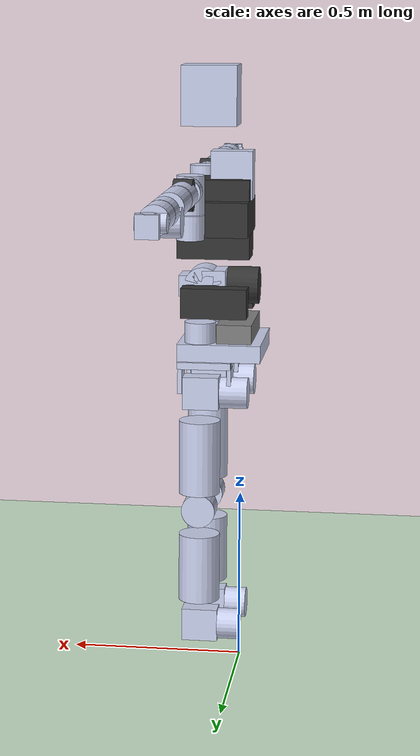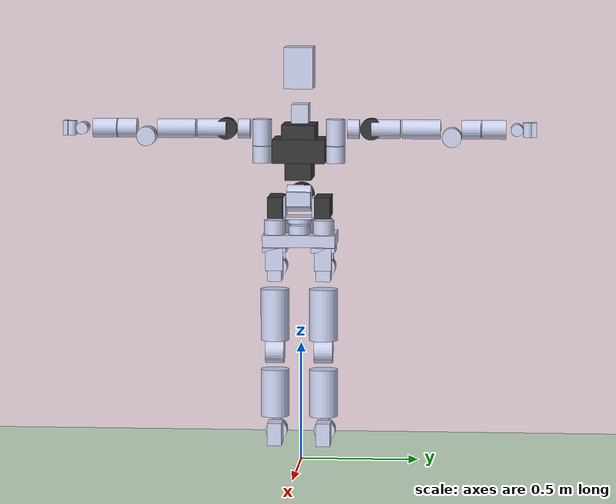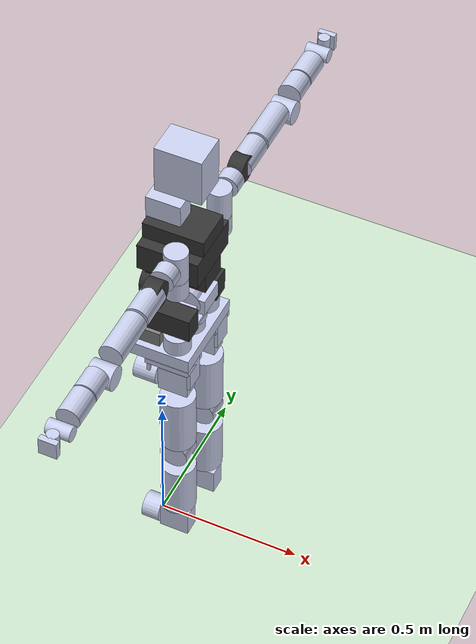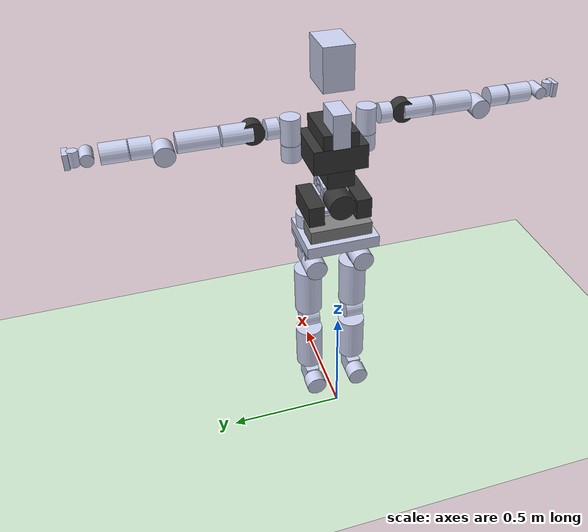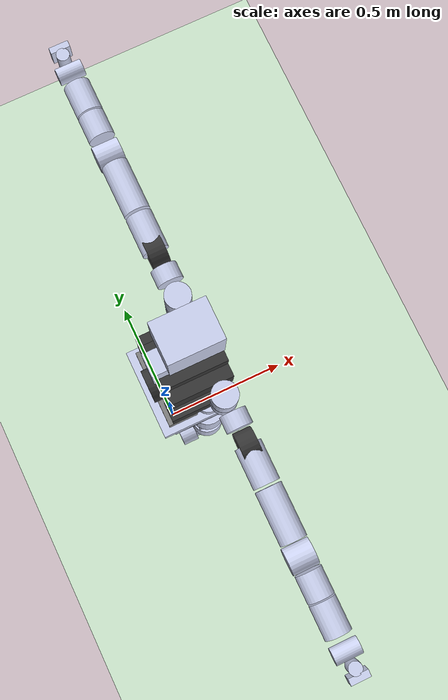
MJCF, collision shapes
<mujoco model="dyros_tocabi_description">

    <compiler angle="radian" balanceinertia="true" meshdir="../meshes/dyros_tocabi/" />
    <default>
        <default class="viz">
            <geom conaffinity="0" contype="0" group="1" rgba=".6 .6 .7 1" type="mesh" />
        </default>
        <default class="cls">
            <geom group="2" rgba="0.79216 0.81961 0.93333 0.5" />
        </default>
        <default class="cls_f">
            <geom friction="1 0.005 0.0001" group="2" rgba="0.79216 0.81961 0.93333 0.1" />
        </default>
        <default class="FTsensor">
            <site group="4" rgba=".1 .1 .9 1" size="0.005 0.005" type="cylinder" />
        </default>
    </default>
    <option cone="elliptic" gravity="0 0 -9.81" iterations="50" jacobian="dense" solver="Newton" timestep="0.0005" tolerance="1e-10" />

    <visual>
        <quality offsamples="16" shadowsize="2048" />
        <map stiffness="10" znear="0.05" />
    </visual>

    <asset>
        <mesh file="Pelvis_link2.STL" name="Pelvis_link" scale="0.001 0.001 0.001" />
        <mesh file="HipRoll_R_link.STL" name="HipRoll_R_link" />
        <mesh file="HipCenter_R_Link.STL" name="HipCenter_R_Link" />
        <mesh file="Thigh_R_Link.STL" name="Thigh_R_Link" />
        <mesh file="Knee_R_Link.STL" name="Knee_R_Link" />
        <mesh file="AnkleCenter_R_Link.STL" name="AnkleCenter_R_Link" />
        <mesh file="AnkleRoll_R_Link.STL" name="AnkleRoll_R_Link" />
        <mesh file="HipRoll_L_Link.STL" name="HipRoll_L_Link" />
        <mesh file="HipCenter_L_Link.STL" name="HipCenter_L_Link" />
        <mesh file="Thigh_L_Link.STL" name="Thigh_L_Link" />
        <mesh file="Knee_L_Link.STL" name="Knee_L_Link" />
        <mesh file="AnkleCenter_L_Link.STL" name="AnkleCenter_L_Link" />
        <mesh file="AnkleRoll_L_Link.STL" name="AnkleRoll_L_Link" />
        <mesh file="waistyaw.STL" name="waist1" scale="0.001 0.001 0.001" />
        <mesh file="waist2.STL" name="waist2" />
        <mesh file="upperbody.STL" name="upperbody" />
        <mesh file="R_shoulder1.STL" name="R_shoulder1" />
        <mesh file="R_shoulder2.STL" name="R_shoulder2" />
        <mesh file="R_shoulder3.STL" name="R_shoulder3" />
        <mesh file="R_arm.STL" name="R_arm" />
        <mesh file="R_elbow.STL" name="R_elbow" />
        <mesh file="R_forearm.STL" name="R_forearm" />
        <mesh file="R_wrist1.STL" name="R_wrist1" />
        <mesh file="L_shoulder1.STL" name="L_shoulder1" />
        <mesh file="L_shoulder2.STL" name="L_shoulder2" />
        <mesh file="L_shoulder3.STL" name="L_shoulder3" />
        <mesh file="L_arm.STL" name="L_arm" />
        <mesh file="L_elbow.STL" name="L_elbow" />
        <mesh file="L_forearm.STL" name="L_forearm" />
        <mesh file="L_wrist1.STL" name="L_wrist1" />
        <mesh file="neck.STL" name="neck" />
        <mesh file="head.STL" name="head" scale="0.001 0.001 0.001" />
        <mesh file="wrist2joint.STL" name="hand" scale="0.001 0.001 0.001" />
        <mesh file="Foot_Link.STL" name="Foot_Link" />

        <texture builtin="gradient" height="128" rgb1="0.4 0.6 0.8" rgb2="0 0 0" type="skybox" width="128" />
        <texture builtin="flat" height="128" mark="cross" markrgb="1 1 1" name="texgeom" rgb1="0.6 0.6 0.6" rgb2="0.6 0.6 0.6" type="cube" width="128" />
        <texture builtin="checker" height="100" name="texplane" rgb1="0.2 0.4 0.6" rgb2="0.8 0.8 0.8" type="2d" width="100" />
        <material name="geom" texture="texgeom" texuniform="true" />
        <material name="MatPlane" reflectance="0.3" texrepeat="1 1" texture="texplane" texuniform="true" />
        <material name="MatPlane2" reflectance="0.3" rgba="0.8 0.9 0.8 0.5" />
    <material name="MatPlane3" reflectance="0.5" shininess="1" specular="1" texrepeat="60 60" texture="texplane"/>
    </asset>

    <worldbody>
        <geom name="ground" type="plane" pos="0 0 0" size="30 30 .05" rgba="0.8 0.9 0.8 1" material="MatPlane3" group="3"/>
        <light diffuse=".8 .8 .8" dir="0 0 -10" directional="true" pos="0 0 10" />
        <light diffuse=".5 .5 .5" dir="-10 0 0" directional="true" pos="10 0 0" />

        <body euler="0 0 0" name="base_link" pos="0.0 0 0.92983">
            <joint armature="0" damping="0" frictionloss="0" limited="false" name="virtual_joint" stiffness="0" type="free" />
            <inertial fullinertia="0.113284 0.0585 0.1422 -0.000116 -0.0056 -0.0" mass="12.9" pos="0.0585 0 0.0431" />
            <geom class="viz" mesh="Pelvis_link" pos="0.11 0 0.02" quat="0.5 0.5 0.5 0.5" rgba="0.20313 0.20313 0.20313 1" />
            <geom class="cls" pos="0.11 0 0.039" size="0.045 0.044" type="cylinder" />
            <geom class="cls" pos="0.11 0.1025 0.05" size="0.045 0.055" type="cylinder" />
            <geom class="cls" pos="0.11 -0.1025 0.05" size="0.045 0.055" type="cylinder" />
            <geom class="cls" pos="0.052 0 0.02" size="0.12 0.1525 0.025" type="box" />
            <geom group="1" pos="0.01 0 0.05" size="0.05 0.13 0.05" type="box" />
            <site group="4" name="Pelvis_IMU" rgba=".1 .1 .9 1" size="0.005 0.005" type="cylinder" />
            <body name="L_HipRoll_Link" pos="0.11 0.1025 -0.1025">
                <inertial fullinertia="0.01821 0.03121 0.2928 -1.676E-07 -0.0007745 -4.53E-09" mass="2.679" pos="-0.06477 0 0.05149" />
                <joint axis="0 0 1" armature="0.614" damping="2.0" frictionloss="8.22" limited="true" name="L_HipYaw_Joint" pos="0 0 0" range="-3.14 3.14" />
                <geom class="viz" mesh="HipRoll_L_Link" rgba="0.20313 0.20313 0.20313 1" />
                <geom class="cls" pos="-0.1 0 0" quat="0.707107 0 0.707107 0" size="0.045 0.04" type="cylinder" />
                <geom class="cls" pos="-0.016 0 0.085" size="0.077 0.05 0.01" type="box" />
                <geom class="cls" pos="0.055 0 0.0475" size="0.006 0.036 0.0475" type="box" />
                <geom class="cls" pos="-0.087 0 0.0475" size="0.006 0.036 0.0475" type="box" />
                <body name="L_HipCenter_Link" pos="0 0 0">
                    <inertial fullinertia="0.3553 0.009161 0.00876 1.725E-08 -3.236E-06 -4.778E-06" mass="2.67" pos="-0.04801 0.0022 2e-05" />
                    <joint axis="1 0 0" armature="0.862" damping="2.0" frictionloss="4.3" limited="true" name="L_HipRoll_Joint" pos="0 0 0" range="-3.14 3.14" />
                    <geom class="viz" mesh="HipCenter_L_Link" rgba="0.20313 0.20313 0.20313 1" />
                    <geom class="cls" pos="-0.0045 0 0" size="0.05225 0.03 0.0475" type="box" />
                    <body name="L_Thigh_Link" pos="0 0 0">
                        <inertial fullinertia="0.0794 0.080 0.009967 4.1E-05 0.000727 -0.001537" mass="5.65" pos="-0.0003 0.00032 -0.247" />
                        <joint axis="0 1 0" armature="1.09" damping="2.0" frictionloss="3.77" limited="true" name="L_HipPitch_Joint" pos="0 0 0" range="-3.14 3.14" />
                        <geom class="viz" mesh="Thigh_L_Link" rgba="0.85938 0.07813 0.23438 1" />
                        <geom class="cls" pos="0 0 -0.35" quat="0.707107 0.707107 0 0" size="0.049 0.038815" type="cylinder" />
                        <geom class="cls" pos="0 0 -0.1923" size="0.06 0.10875" type="cylinder" />
                        <geom class="viz" pos="0 0 -0.1723" rgba="0.20313 0.20313 0.20313 1" size="0.033 0.02 0.06875" type="box" />
                        <body name="L_Knee_Link" pos="0 0 -0.35">
                            <inertial fullinertia="0.1506 0.5588 0.007451 2.887E-05 0.002607 0.001486" mass="2.614" pos="0.007 0.00214 -0.1686" />
                            <joint axis="0 1 0" armature="1.09" damping="2.0" frictionloss="4.18" limited="true" name="L_Knee_Joint" pos="0 0 0" range="-3.14 3.14" />
                            <geom class="viz" mesh="Knee_L_Link" rgba="0.85938 0.07813 0.23438 1" />
                            <geom class="cls" pos="0 0 -0.175" size="0.06 0.1" type="cylinder" />
                            <geom class="viz" pos="0 0 -0.1603" rgba="0.20313 0.20313 0.20313 1" size="0.028 0.02 0.06875" type="box" />
                            <body name="L_AnkleCenter_Link" pos="0 0 -0.35">
                                <inertial fullinertia="0.003548 0.004046 0.00397 4.0E-06 2.222E-06 5.0E-06" mass="2.833" pos="-0.00228 -0.0006 0.0" />
                                <joint axis="0 1 0" armature="1.09" damping="2.0" frictionloss="7.09" limited="true" name="L_AnklePitch_Joint" pos="0 0 0" range="-3.14 3.14" />
                                <geom class="viz" mesh="AnkleCenter_L_Link" rgba="0.20313 0.20313 0.20313 1" />
                                <geom class="cls" pos="-0.0045 0 0" size="0.05225 0.03 0.0475" type="box" />
                                <body name="L_AnkleRoll_Link" pos="0 0 0">
                                    <inertial fullinertia="0.003951 0.008642 0.007223 2e-05 0.0019 -5.435E-06" mass="2.1" pos="-0.0746 0.0 -0.0096" />
                                    <joint axis="1 0 0" armature="0.360" damping="2.0" frictionloss="3.41" limited="true" name="L_AnkleRoll_Joint" pos="0 0 0" range="-3.14 3.14" />
                                    <geom class="viz" mesh="AnkleRoll_L_Link" rgba="0.85938 0.07813 0.23438 1" />
                                    <geom class="cls" pos="-0.08875 0 0" quat="0.707107 0 -0.707107 0" size="0.045 0.03125" type="cylinder" />
                                    <body name="L_Foot_Link" pos="0 0 0">
                                        <inertial fullinertia="0.003386409 0.012600125 0.014296 1.1237E-05 -0.000526477 -1.976E-06" mass="2.350" pos="0.016 -0.00008 -0.1206" />
                                        <geom class="viz" mesh="Foot_Link" rgba="0.85938 0.07813 0.23438 1" />
                                        <geom class="cls" pos="0.03 0 -0.145" size="0.15 0.085 0.0135" type="box" />
                                        <geom class="cls" pos="-0.08875 0 0" quat="0.707107 0 -0.707107 0" size="0.045 0.03125" type="cylinder" />
                                        <site class="FTsensor" name="LF_FT" pos="0 0 -0.09" />
                                    </body>
                                </body>
                            </body>
                        </body>
                    </body>
                </body>
            </body>

            <body name="R_HipRoll_Link" pos="0.11 -0.1025 -0.1025">
                <inertial fullinertia="0.01821 0.03121 0.2928 -1.676E-07 -0.0007745 -4.53E-09" mass="2.679" pos="-0.06477 0 0.05149" />
                <joint axis="0 0 1" armature="0.614" damping="2.0" frictionloss="8.22" limited="true" name="R_HipYaw_Joint" pos="0 0 0" range="-3.14 3.14" />
                <geom class="viz" mesh="HipRoll_R_link" rgba="0.20313 0.20313 0.20313 1" />
                <geom class="cls" pos="-0.1 0 0" quat="0.707107 0 0.707107 0" size="0.045 0.04" type="cylinder" />
                <geom class="cls" pos="-0.016 0 0.085" size="0.077 0.05 0.01" type="box" />
                <geom class="cls" pos="0.055 0 0.0475" size="0.006 0.036 0.0475" type="box" />
                <geom class="cls" pos="-0.087 0 0.0475" size="0.006 0.036 0.0475" type="box" />
                <body name="R_HipCenter_Link" pos="0 0 0">
                    <inertial fullinertia="0.3553 0.009161 0.00876 1.725E-08 -3.236E-06 -4.778E-06" mass="2.67" pos="-0.04801 -0.0022 2e-05" />
                    <joint axis="1 0 0" armature="0.862" damping="2.0" frictionloss="4.3" limited="true" name="R_HipRoll_Joint" pos="0 0 0" range="-3.14 3.14" />
                    <geom class="viz" mesh="HipCenter_R_Link" rgba="0.20313 0.20313 0.20313 1" />
                    <geom class="cls" pos="-0.0045 0 0" size="0.05225 0.03 0.0475" type="box" />
                    <body name="R_Thigh_Link" pos="0 0 0">
                        <inertial fullinertia="0.0794 0.080 0.009967 4.1E-05 0.000727 0.001537" mass="5.65" pos="-0.0003 -0.00032 -0.247" />
                        <joint axis="0 1 0" armature="1.09" damping="2.0" frictionloss="3.77" limited="true" name="R_HipPitch_Joint" pos="0 0 0" range="-3.14 3.14" />
                        <geom class="viz" mesh="Thigh_R_Link" rgba="0.85938 0.07813 0.23438 1" />
                        <geom class="cls" pos="0 0 -0.35" quat="0.707107 0.707107 0 0" size="0.049 0.038815" type="cylinder" />
                        <geom class="cls" pos="0 0 -0.1923" size="0.06 0.10875" type="cylinder" />
                        <geom class="viz" pos="0 0 -0.1723" rgba="0.20313 0.20313 0.20313 1" size="0.033 0.02 0.06875" type="box" />
                        <body name="R_Knee_Link" pos="0 0 -0.35">
                            <inertial fullinertia="0.1506 0.5588 0.007451 -2.887E-05 -0.002607 -0.001486" mass="2.614" pos="0.007 0.00214 -0.1686" />
                            <joint axis="0 1 0" armature="1.09" damping="2.0" frictionloss="4.18" limited="true" name="R_Knee_Joint" pos="0 0 0" range="-3.14 3.14" />
                            <geom class="viz" mesh="Knee_R_Link" rgba="0.85938 0.07813 0.23438 1" />
                            <geom class="cls" pos="0 0 -0.175" size="0.06 0.1" type="cylinder" />
                            <geom class="viz" pos="0 0 -0.1603" rgba="0.20313 0.20313 0.20313 1" size="0.028 0.02 0.06875" type="box" />
                            <body name="R_AnkleCenter_Link" pos="0 0 -0.35">
                                <inertial fullinertia="0.003548 0.004046 0.00397 -4.0E-06 -2.222E-06 5.0E-06" mass="2.833" pos="-0.00228 0.0006 0.0" />
                                <joint axis="0 1 0" armature="1.09" damping="2.0" frictionloss="7.09" limited="true" name="R_AnklePitch_Joint" pos="0 0 0" range="-3.14 3.14" />
                                <geom class="viz" mesh="AnkleCenter_R_Link" rgba="0.20313 0.20313 0.20313 1" />
                                <geom class="cls" pos="-0.0045 0 0" size="0.05225 0.03 0.0475" type="box" />
                                <body name="R_AnkleRoll_Link" pos="0 0 0">
                                    <inertial fullinertia="0.003951 0.008642 0.007223 2e-05 0.0019 -5.435E-06" mass="2.1" pos="-0.0746 0.0 -0.0096" />
                                    <joint axis="1 0 0" armature="0.360" damping="2.0" frictionloss="3.41" limited="true" name="R_AnkleRoll_Joint" pos="0 0 0" range="-3.14 3.14" />
                                    <geom class="viz" mesh="AnkleRoll_R_Link" rgba="0.85938 0.07813 0.23438 1" />
                                    <geom class="cls" pos="-0.08875 0 0" quat="0.707107 0 -0.707107 0" size="0.045 0.03125" type="cylinder" />
                                    <body name="R_Foot_Link" pos="0 0 0">
                                        <inertial fullinertia="0.003386409 0.012600125 0.014296 1.1237E-05 -0.000526477 -1.976E-06" mass="2.35" pos="0.016 0.00008 -0.1206" />
                                        <geom class="viz" mesh="Foot_Link" rgba="0.85938 0.07813 0.23438 1" />
                                        <geom class="cls" pos="0.03 0 -0.145" size="0.15 0.085 0.0135" type="box" />
                                        <geom class="cls" pos="-0.08875 0 0" quat="0.707107 0 -0.707107 0" size="0.045 0.03125" type="cylinder" />
                                        <site class="FTsensor" name="RF_FT" pos="0 0 -0.09" />
                                    </body>
                                </body>
                            </body>
                        </body>
                    </body>
                </body>
            </body>

            <body name="Waist1_Link" pos="0.11 0 0.1979">
                <inertial fullinertia="0.06657 0.02504 0.08023 0.0001591 0.0001333 0.0003246" mass="6.477" pos="-0.033735 0 -0.0386" />
                <joint axis="0 0 1" armature="0.078" damping="2.0" frictionloss="15.0" limited="true" name="Waist1_Joint" pos="0 0 0" range="-2.094 2.094" />
                <geom class="viz" mesh="waist1" pos="0 0 -0.085" quat="0 0.707107 0 0.707107" rgba="0.85938 0.07813 0.23438 1" />
                <geom class="cls" pos="0 0 -0.096" size="0.05 0.01" type="cylinder" />
                <geom class="cls" pos="0 0 -0.081" size="0.047 0.065 0.005" type="box" />
                <geom class="cls" pos="0 0.06 -0.0405" size="0.047 0.005 0.0455" type="box" />
                <geom class="cls" pos="0 -0.06 -0.0405" size="0.047 0.005 0.0455" type="box" />

                <geom class="viz" pos="-0.04 -0.099 -0.038" rgba="0.20313 0.20313 0.20313 1" size="0.095 0.032 0.0435" type="box" />
                <geom class="viz" pos="-0.04 0.099 -0.038" rgba="0.20313 0.20313 0.20313 1" size="0.095 0.032 0.0435" type="box" />

                <body name="Waist2_Link" pos="0 0 0">
                    <inertial fullinertia="0.006439 0.007393 0.007618 -1e-05 0.0 -1e-06" mass="3.881" pos="-0.000266 0.009 0" />
                    <joint axis="0 1 0" armature="0.078" damping="2.0" frictionloss="15.0" limited="true" name="Waist2_Joint" pos="0 0 0" range="-2.094 2.094" />
                    <geom class="viz" mesh="waist2" rgba="0.20313 0.20313 0.20313 1" />
                    <geom class="cls" quat="0.707107 0.707107 0 0" size="0.055 0.05" type="cylinder" />
                    <geom class="cls" pos="0.02 0 0" size="0.05 0.05 0.03" type="box" />
                    <geom class="cls" pos="-0.02 0 0" size="0.045 0.05 0.0455" type="box" />
                    <body name="Upperbody_Link" pos="0 0 0">
                        <inertial fullinertia="0.309 0.2935 0.2137 0.000385 -0.0422 0.0005" mass="20.034" pos="-0.0608 0.0017 0.1077" quat="0.999909 -0.000268355 -0.0135223 5.11667e-05" />
                        <joint axis="-1 0 0" armature="0.078" damping="2.0" frictionloss="15.0" limited="true" name="Upperbody_Joint" pos="0 0 0" range="-2.094 2.094" />
                        <geom class="viz" mesh="upperbody" rgba="0.85938 0.07813 0.23438 1" />
                        <geom class="viz" pos="-0.03 0 0.2" rgba="0.20313 0.20313 0.20313 1" size="0.105 0.11 0.05" type="box" />
                        <geom class="viz" pos="-0.03 0 0.115" rgba="0.20313 0.20313 0.20313 1" size="0.105 0.055 0.035" type="box" />
                        <geom class="viz" pos="-0.03 0 0.28" rgba="0.20313 0.20313 0.20313 1" size="0.105 0.07 0.03" type="box" />
                        <geom class="cls" pos="-0.03 0 0.2" size="0.105 0.11 0.05" type="box" />
                        <geom class="cls" pos="-0.03 0 0.115" size="0.105 0.055 0.035" type="box" />
                        <geom class="cls" pos="-0.03 0 0.28" size="0.105 0.07 0.03" type="box" />
                        <geom class="cls" pos="-0.08 0 0.32" size="0.06 0.035 0.07" type="box" />
                        <geom class="viz" pos="-0.115 0 0" quat="0.707107 0 0.707107 0" rgba="0.20313 0.20313 0.20313 1" size="0.054 0.045" type="cylinder" />
                        <geom class="cls" pos="0.023 0.154 0.185" size="0.04 0.035" type="cylinder" />
                        <geom class="cls" pos="0.023 -0.154 0.185" size="0.04 0.035" type="cylinder" />

                        <body name="L_Shoulder1_Link" pos="0.023 0.154 0.2275">
                            <inertial fullinertia="0.001925606 0.001936576 0.185330098 0.000001433 0.000002313 0.000078962" mass="1.6762" pos="-3e-05 0.00397 0.06029" />
                            <joint axis="0 0 1" armature="0.18" damping="3.0" frictionloss="2.5" limited="true" name="L_Shoulder1_Joint" pos="0 0 0" range="-2.09 1.54" />
                            <geom class="viz" mesh="L_shoulder1" rgba="0.85938 0.07813 0.23438 1" />
                            <geom class="cls" pos="0 0 0.05" size="0.04 0.055" type="cylinder" />
                            <body name="L_Shoulder2_Link" pos="0 0.0341 0.065">
                                <inertial fullinertia="0.000989903 0.184275853 0.001067575 0.000028237 -0.000000465 0.000000133" mass="0.4016" pos="0.00107 0.0491 -1e-05" />
                                <joint axis="0 1 0" armature="0.18" damping="2.0" frictionloss="2.5" limited="true" name="L_Shoulder2_Joint" pos="0 0 0" range="-3.14159 3.14159" />
                                <geom class="viz" mesh="L_shoulder2" rgba="0.20313 0.20313 0.20313 1" />
                                <geom class="cls" pos="0 0.04 0" quat="0.707107 0.707107 0 0" size="0.04 0.025" type="cylinder" />
                                <body name="L_Shoulder3_Link" pos="0 0.115 0">
                                    <inertial fullinertia="0.192093159 0.002493784 0.008296854 -0.000365084 -0.000002746 -0.000023821" mass="2.90141" pos="0.00262 0.04826 0.00023" />
                                    <joint axis="-1 0 0" armature="0.18" damping="2.0" frictionloss="2.5" limited="true" name="L_Shoulder3_Joint" pos="0 0 0" range="-1.9199 1.9199" />
                                    <geom class="viz" mesh="L_shoulder3" rgba="0.20313 0.20313 0.20313 1" />
                                    <geom class="cls" pos="0 0.06 0" quat="0.707107 0.707107 0 0" size="0.04 0.06" type="cylinder" />
                                    <geom class="viz" pos="0 0 0" quat="0.707107 0 0.707107 0" rgba="0.20313 0.20313 0.20313 1" size="0.045 0.027" type="cylinder" />
                                    <body name="L_Armlink_Link" pos="0 0.1281 0">
                                        <inertial fullinertia="0.002878609 0.184381923 0.003117058 0.000302586 -0.000036001 0.000398377" mass="0.58517" pos="-0.01896 0.11642 -0.0119" />
                                        <joint axis="0 1 0" armature="0.18" damping="2.0" frictionloss="2.5" limited="true" name="L_Armlink_Joint" pos="0 0 0" range="-3.14159 3.14159" />
                                        <geom class="viz" mesh="L_arm" rgba="0.85938 0.07813 0.23438 1" />
                                        <geom class="cls" pos="0 0.08 0" quat="0.707107 0.707107 0 0" size="0.04 0.08" type="cylinder" />
                                        <body name="L_Elbow_Link" pos="0 0.207 -0.0325">
                                            <inertial fullinertia="0.055865466 0.001895543 0.005958821 0.000151764 0.000055158 0.001530917" mass="2.06511" pos="-0.00136 0.05256 0.01764" />
                                            <joint axis="1 0 0" armature="0.0032" damping="2.0" frictionloss="2.5" limited="true" name="L_Elbow_Joint" pos="0 0 0" range="-3.14159 2.8" />
                                            <geom class="viz" mesh="L_elbow" rgba="0.20313 0.20313 0.20313 1" />
                                            <geom class="cls" pos="0 0.08 0.0325" quat="0.707107 0.707107 0 0" size="0.04 0.04" type="cylinder" />
                                            <geom class="cls" quat="0.707107 0 0.707107 0" size="0.04 0.04" type="cylinder" />
                                            <geom class="viz" pos="0.003 0 0" quat="0.707107 0 0.707107 0" rgba="0.20313 0.20313 0.20313 1" size="0.034 0.025" type="cylinder" />
                                            <body name="L_Forearm_Link" pos="0 0.1244 0.0325">
                                                <inertial fullinertia="0.001053636 0.049889479 0.001266418 0.000084568 0.000022117 0.000019539" mass="0.35234" pos="-0.01426 0.0767 0.00033" />
                                                <joint axis="0 1 0" armature="0.0032" damping="2.0" frictionloss="2.5" limited="true" name="L_Forearm_Joint" pos="0 0 0" range="-3.14159 3.14159" />
                                                <geom class="viz" mesh="L_forearm" rgba="0.85938 0.07813 0.23438 1" />
                                                <geom class="cls" pos="0 0.05 0" quat="0.707107 0.707107 0 0" size="0.04 0.05" type="cylinder" />
                                                <geom class="cls" pos="0 0.1451 0" quat="0.707107 0 0.707107 0" size="0.025 0.04" type="cylinder" />
                                                <body name="L_Wrist1_Link" pos="0 0.1451 0">
                                                    <inertial fullinertia="0.015205197 0.000396376 0.000683187 0.000024218 -0.000000263 0.000000688" mass="0.70923" pos="-0.00158 0.02153 3e-05" />
                                                    <joint axis="1 0 0" armature="0.0032" damping="2.0" frictionloss="1.0" limited="true" name="L_Wrist1_Joint" pos="0 0 0" range="-3.14159 3.14159" />
                                                    <geom class="viz" mesh="L_wrist1" rgba="0.20313 0.20313 0.20313 1" />
                                                    <geom class="cls" pos="0 0.046 0" size="0.02 0.03" type="cylinder" />
                                                    <body name="L_Wrist2_Link" pos="0 0.046 0" quat="0 0 -0.707107 0.707107">
                                                        <inertial fullinertia="0.000865450 0.000696917 0.015377823 0 0 0" mass="0.1" pos="0.00063 0.0636 0.00178" />
                                                        <joint axis="0 1 0" armature="0.0032" damping="2.0" frictionloss="1.0" limited="true" name="L_Wrist2_Joint" pos="0 0 0" range="-2.094 2.094" />
                                                        <geom class="cls" pos="0 0 -0.025" size="0.03 0.03 0.01" type="box" />
                                                        <geom class="viz" pos="0 0 -0.025" rgba="0.20313 0.20313 0.20313 1" size="0.03 0.03 0.01" type="box" />
                                                        <site class="FTsensor" name="LH_FT" pos="0 0 -0.035" />
                                                    </body>
                                                </body>
                                            </body>
                                        </body>
                                    </body>
                                </body>
                            </body>
                        </body>
                        <body name="Neck_Link" pos="-0.036 0 0.3795">
                            <inertial fullinertia="0.000058259 0.000036489 0.000058237 -0.000000076 0.000000268 -0.000001002" mass="0.404" pos="-0.0004 -0.002 0.02576" />
                            <joint axis="0 0 1" armature="0.0032" damping="4.0" frictionloss="8.22" limited="true" name="Neck_Joint" pos="0 0 0" range="-1.54 1.54" />
                            <geom class="viz" mesh="neck" rgba="0.20313 0.20313 0.20313 1" />
                            <body name="Head_Link" pos="0 0 0.0275">
                                <inertial fullinertia="0.0079 0.012 0.01 0.0 0.0025 0.0" mass="1.417" pos="0.0372 0 0.0708" />
                                <joint axis="0 1 0" armature="0.0032" damping="2.0" frictionloss="8.22" limited="true" name="Head_Joint" pos="0 0 0" range="-1.54 1.54" />
                                <geom class="viz" mesh="head" pos="0.02 0 -0.6" rgba="0.85938 0.07813 0.23438 1" />
                                <geom class="cls" pos="0.02 0 0.14" size="0.08 0.06 0.086" type="box" />
                            </body>
                        </body>
                        <body name="R_Shoulder1_Link" pos="0.023 -0.154 0.2275">
                            <inertial fullinertia="0.001925606 0.001936576 0.185330098 -0.000001433 0.000002313 -0.000078962" mass="1.6762" pos="-3e-05 -0.00397 0.06029" />
                            <joint axis="0 0 1" armature="0.18" damping="5.0" frictionloss="2.5" limited="true" name="R_Shoulder1_Joint" pos="0 0 0" range="-1.54 2.09" />
                            <geom class="viz" mesh="R_shoulder1" rgba="0.85938 0.07813 0.23438 1" />
                            <geom class="cls" pos="0 0 0.05" size="0.04 0.055" type="cylinder" />
                            <body name="R_Shoulder2_Link" pos="0 -0.0341 0.065">
                                <inertial fullinertia="0.000989903 0.184275853 0.001067575 -0.000028237 -0.000000465 -0.000000133" mass="0.4016" pos="0.00107 -0.0491 -1e-05" />
                                <joint axis="0 -1 0" armature="0.18" damping="2.0" frictionloss="2.5" limited="true" name="R_Shoulder2_Joint" pos="0 0 0" range="-3.14159 3.14159" />
                                <geom class="viz" mesh="R_shoulder2" rgba="0.20313 0.20313 0.20313 1" />
                                <geom class="cls" pos="0 -0.04 0" quat="0.707107 0.707107 0 0" size="0.04 0.025" type="cylinder" />
                                <body name="R_Shoulder3_Link" pos="0 -0.115 0">
                                    <inertial fullinertia="0.192093159 0.002493784 0.008296854 0.000365084 -0.000002746 0.000023821" mass="2.90141" pos="0.00262 -0.04826 0.00023" />
                                    <joint axis="-1 0 0" armature="0.18" damping="2.0" frictionloss="2.5" limited="true" name="R_Shoulder3_Joint" pos="0 0 0" range="-1.9199 1.9199" />
                                    <geom class="viz" mesh="R_shoulder3" rgba="0.20313 0.20313 0.20313 1" />
                                    <geom class="cls" pos="0 -0.06 0" quat="0.707107 0.707107 0 0" size="0.04 0.06" type="cylinder" />

                                    <geom class="viz" pos="0 0 0" quat="0.707107 0 0.707107 0" rgba="0.20313 0.20313 0.20313 1" size="0.045 0.027" type="cylinder" />
                                    <body name="R_Armlink_Link" pos="0 -0.1281 0">
                                        <inertial fullinertia="0.002878609 0.184381923 0.003117058 -0.000302586 -0.000036001 -0.000398377" mass="0.58517" pos="-0.01896 -0.11642 -0.0119" />
                                        <joint axis="0 -1 0" armature="0.18" damping="2.0" frictionloss="2.5" limited="true" name="R_Armlink_Joint" pos="0 0 0" range="-3.14159 3.14159" />
                                        <geom class="viz" mesh="R_arm" rgba="0.85938 0.07813 0.23438 1" />
                                        <geom class="cls" pos="0 -0.08 0" quat="0.707107 0.707107 0 0" size="0.04 0.08" type="cylinder" />
                                        <body name="R_Elbow_Link" pos="0 -0.207 -0.0325">
                                            <inertial fullinertia="0.055865466 0.001895543 0.005958821 -0.000151764 0.000055158 -0.001530917" mass="2.06511" pos="-0.00136 -0.05256 0.01764" />
                                            <joint axis="1 0 0" armature="0.0032" damping="2.0" frictionloss="2.5" limited="true" name="R_Elbow_Joint" pos="0 0 0" range="-2.967 3.14159" />
                                            <geom class="viz" mesh="R_elbow" rgba="0.20313 0.20313 0.20313 1" />
                                            <geom class="cls" pos="0 -0.08 0.0325" quat="0.707107 0.707107 0 0" size="0.04 0.04" type="cylinder" />
                                            <geom class="cls" quat="0.707107 0 0.707107 0" size="0.04 0.04" type="cylinder" />
                                            <geom class="viz" pos="0.003 0 0" quat="0.707107 0 0.707107 0" rgba="0.20313 0.20313 0.20313 1" size="0.034 0.025" type="cylinder" />
                                            <body name="R_Forearm_Link" pos="0 -0.1244 0.0325">
                                                <inertial fullinertia="0.001053636 0.049889479 0.001266418 -0.000084568 0.000022117 -0.000019539" mass="0.35234" pos="-0.01426 -0.0767 0.00033" />
                                                <joint axis="0 -1 0" armature="0.0032" damping="2.0" frictionloss="2.5" limited="true" name="R_Forearm_Joint" pos="0 0 0" range="-3.14159 3.14159" />
                                                <geom class="viz" mesh="R_forearm" rgba="0.85938 0.07813 0.23438 1" />
                                                <geom class="cls" pos="0 -0.05 0" quat="0.707107 0.707107 0 0" size="0.04 0.05" type="cylinder" />
                                                <geom class="cls" pos="0 -0.1451 0" quat="0.707107 0 0.707107 0" size="0.025 0.04" type="cylinder" />
                                                <body name="R_Wrist1_Link" pos="0 -0.1451 0">
                                                    <inertial fullinertia="0.015205197 0.000396376 0.000683187 -0.000024218 -0.000000263 -0.000000688" mass="0.70923" pos="-0.00158 -0.02153 3e-05" />
                                                    <joint axis="1 0 0" armature="0.0032" damping="2.0" frictionloss="1.0" limited="true" name="R_Wrist1_Joint" pos="0 0 0" range="-3.14159 3.14159" />
                                                    <geom class="viz" mesh="R_wrist1" rgba="0.20313 0.20313 0.20313 1" />
                                                    <geom class="cls" pos="0 -0.046 0" size="0.02 0.03" type="cylinder" />
                                                    <body name="R_Wrist2_Link" pos="0 -0.046 0" quat="0 0 0.707107 0.707107">
                                                        <inertial fullinertia="0.000865450 0.000696917 0.015377823 0 0 0" mass="0.1" pos="0.00063 -0.0636 0.00178" quat="0.5 0.5 -0.5 0.5" />
                                                        <joint axis="0 -1 0" armature="0.0032" damping="2.0" frictionloss="1.0" limited="true" name="R_Wrist2_Joint" pos="0 0 0" range="-2.094 2.094" />
                                                        <geom class="cls" pos="0 0 -0.025" size="0.03 0.03 0.01" type="box" />
                                                        <geom class="viz" pos="0 0 -0.025" rgba="0.20313 0.20313 0.20313 1" size="0.03 0.03 0.01" type="box" />
                                                        <site class="FTsensor" name="RH_FT" pos="0 0 -0.035" />
                                                    </body>
                                                </body>
                                            </body>
                                        </body>
                                    </body>
                                </body>
                            </body>
                        </body>
                    </body>
                </body>
            </body>
        </body>

    </worldbody>

    <actuator>
        <motor ctrlrange="-333 333" joint="L_HipYaw_Joint" name="L_HipYaw_Motor" />
        <motor ctrlrange="-232 232" joint="L_HipRoll_Joint" name="L_HipRoll_Motor" />
        <motor ctrlrange="-263 263" joint="L_HipPitch_Joint" name="L_HipPitch_Motor" />
        <motor ctrlrange="-289 289" joint="L_Knee_Joint" name="L_Knee_Motor" />
        <motor ctrlrange="-222 222" joint="L_AnklePitch_Joint" name="L_AnklePitch_Motor" />
        <motor ctrlrange="-166 166" joint="L_AnkleRoll_Joint" name="L_AnkleRoll_Motor" />

        <motor ctrlrange="-333 333" joint="R_HipYaw_Joint" name="R_HipYaw_Motor" />
        <motor ctrlrange="-232 232" joint="R_HipRoll_Joint" name="R_HipRoll_Motor" />
        <motor ctrlrange="-263 263" joint="R_HipPitch_Joint" name="R_HipPitch_Motor" />
        <motor ctrlrange="-289 289" joint="R_Knee_Joint" name="R_Knee_Motor" />
        <motor ctrlrange="-222 222" joint="R_AnklePitch_Joint" name="R_AnklePitch_Motor" />
        <motor ctrlrange="-166 166" joint="R_AnkleRoll_Joint" name="R_AnkleRoll_Motor" />

        <motor ctrlrange="-303 303" joint="Waist1_Joint" name="Waist1_Motor" />
        <motor ctrlrange="-303 303" joint="Waist2_Joint" name="Waist2_Motor" />
        <motor ctrlrange="-303 303" joint="Upperbody_Joint" name="Upperbody_Motor" />

        <motor ctrlrange="-64 64" joint="L_Shoulder1_Joint" name="L_Shoulder1_Motor" />
        <motor ctrlrange="-64 64" joint="L_Shoulder2_Joint" name="L_Shoulder2_Motor" />
        <motor ctrlrange="-64 64" joint="L_Shoulder3_Joint" name="L_Shoulder3_Motor" />
        <motor ctrlrange="-64 64" joint="L_Armlink_Joint" name="L_Armlink_Motor" />
        <motor ctrlrange="-23 23" joint="L_Elbow_Joint" name="L_Elbow_Motor" />
        <motor ctrlrange="-23 23" joint="L_Forearm_Joint" name="L_Forearm_Motor" />
        <motor ctrlrange="-10 10" joint="L_Wrist1_Joint" name="L_Wrist1_Motor" />
        <motor ctrlrange="-10 10" joint="L_Wrist2_Joint" name="L_Wrist2_Motor" />

        <motor ctrlrange="-10 10" joint="Neck_Joint" name="Neck_Motor" />
        <motor ctrlrange="-10 10" joint="Head_Joint" name="Head_Motor" />

        <motor ctrlrange="-64 64" joint="R_Shoulder1_Joint" name="R_Shoulder1_Motor" />
        <motor ctrlrange="-64 64" joint="R_Shoulder2_Joint" name="R_Shoulder2_Motor" />
        <motor ctrlrange="-64 64" joint="R_Shoulder3_Joint" name="R_Shoulder3_Motor" />
        <motor ctrlrange="-64 64" joint="R_Armlink_Joint" name="R_Armlink_Motor" />
        <motor ctrlrange="-23 23" joint="R_Elbow_Joint" name="R_Elbow_Motor" />
        <motor ctrlrange="-23 23" joint="R_Forearm_Joint" name="R_Forearm_Motor" />
        <motor ctrlrange="-10 10" joint="R_Wrist1_Joint" name="R_Wrist1_Motor" />
        <motor ctrlrange="-10 10" joint="R_Wrist2_Joint" name="R_Wrist2_Motor" />

    </actuator>

    <sensor>
        <force name="LF_Force_sensor" site="LF_FT" />
        <torque name="LF_Torque_sensor" site="LF_FT" />
        <force name="RF_Force_sensor" site="RF_FT" />
        <torque name="RF_Torque_sensor" site="RF_FT" />
    </sensor>

</mujoco>
